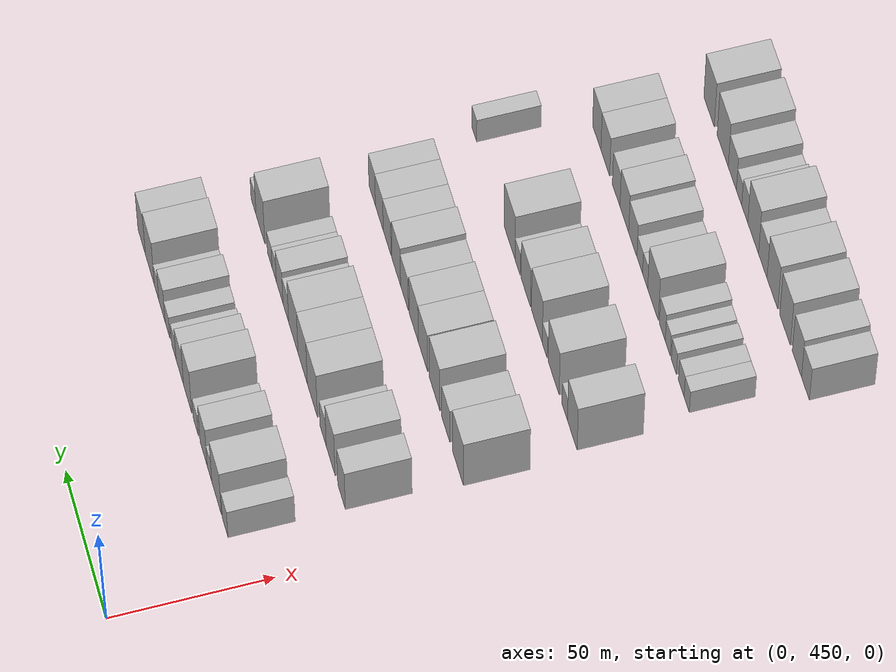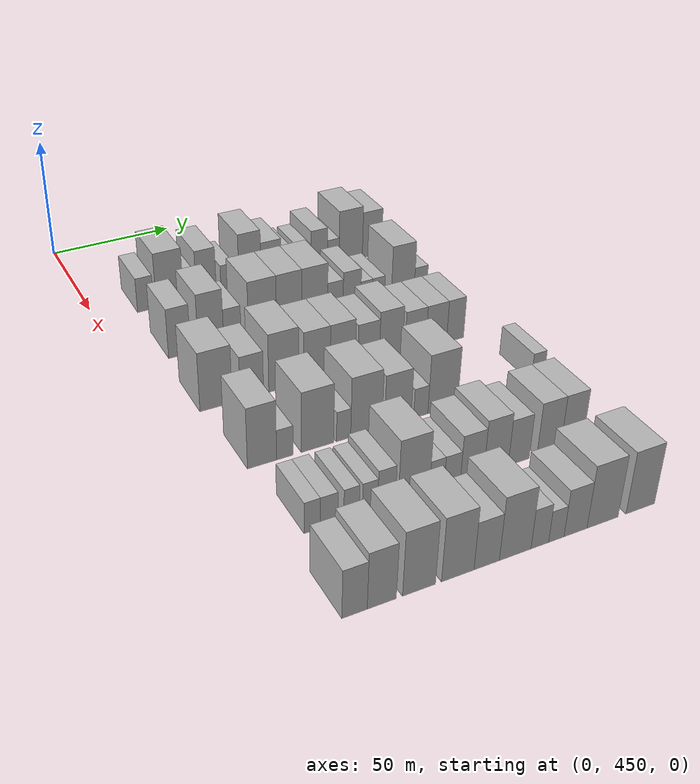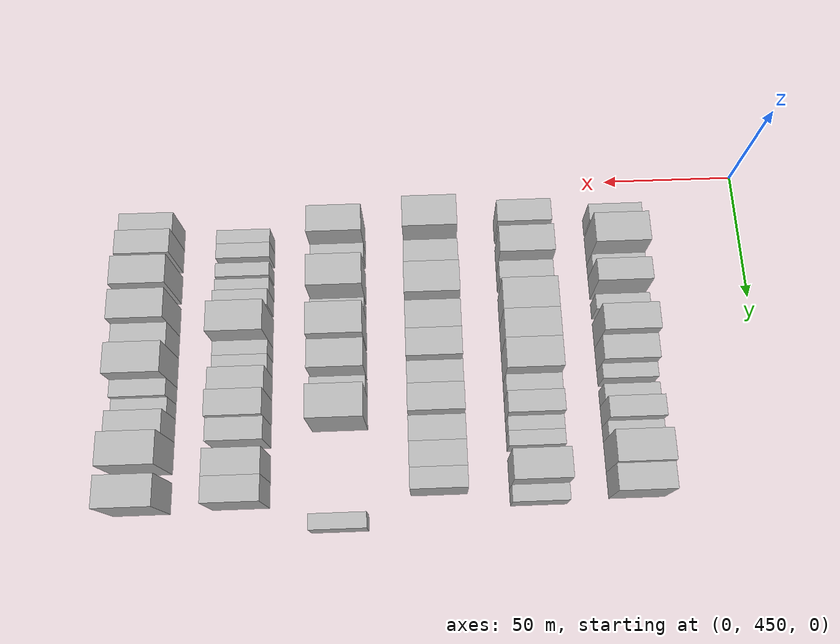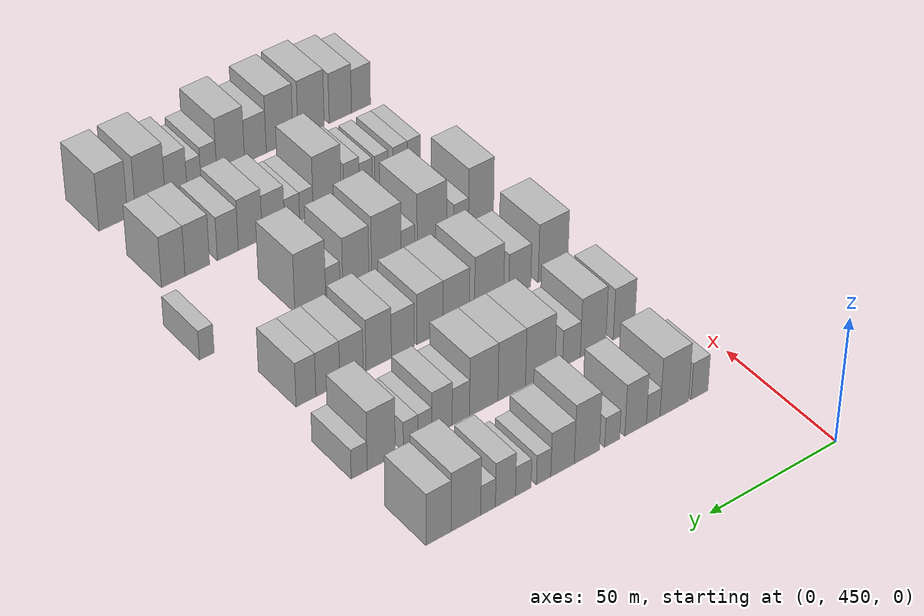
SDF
<sdf version="1.6">
 <world name="default">
  <model name="building_114">
   <static>1</static>
   <pose>50.0000 469.5621 0 0.000000 0.000000 0.000000</pose>
   <link name="link">
    <pose>0 0 7.50 0 0 0</pose>
    <collision name="collision"><geometry><box><size>20.0000 6.7365 15.0000</size></box></geometry></collision>
    <visual name="visual">
     <cast_shadows>0</cast_shadows>
     <geometry><box><size>20.0000 6.7365 15.0000</size></box></geometry>
     <material>
      <script>
       <uri>model://HANNAS_wall/materials/scripts</uri>
       <uri>model://HANNAS_wall/materials/textures</uri>
       <name>vrc/HANNAS_wall</name>
      </script>
     </material>
    </visual>
   </link>
  </model>
  <model name="building_115">
   <static>1</static>
   <pose>50.0000 479.5856 0 0.000000 0.000000 0.000000</pose>
   <link name="link">
    <pose>0 0 12.00 0 0 0</pose>
    <collision name="collision"><geometry><box><size>20.0000 11.3105 24.0000</size></box></geometry></collision>
    <visual name="visual">
     <cast_shadows>0</cast_shadows>
     <geometry><box><size>20.0000 11.3105 24.0000</size></box></geometry>
     <material>
      <script>
       <uri>model://HANNAS_wall/materials/scripts</uri>
       <uri>model://HANNAS_wall/materials/textures</uri>
       <name>vrc/HANNAS_wall</name>
      </script>
     </material>
    </visual>
   </link>
  </model>
  <model name="building_116">
   <static>1</static>
   <pose>50.0000 487.9331 0 0.000000 0.000000 0.000000</pose>
   <link name="link">
    <pose>0 0 6.00 0 0 0</pose>
    <collision name="collision"><geometry><box><size>20.0000 5.3845 12.0000</size></box></geometry></collision>
    <visual name="visual">
     <cast_shadows>0</cast_shadows>
     <geometry><box><size>20.0000 5.3845 12.0000</size></box></geometry>
     <material>
      <script>
       <uri>model://HANNAS_wall/materials/scripts</uri>
       <uri>model://HANNAS_wall/materials/textures</uri>
       <name>vrc/HANNAS_wall</name>
      </script>
     </material>
    </visual>
   </link>
  </model>
  <model name="building_117">
   <static>1</static>
   <pose>50.0000 494.8552 0 0.000000 0.000000 0.000000</pose>
   <link name="link">
    <pose>0 0 10.50 0 0 0</pose>
    <collision name="collision"><geometry><box><size>20.0000 8.4597 21.0000</size></box></geometry></collision>
    <visual name="visual">
     <cast_shadows>0</cast_shadows>
     <geometry><box><size>20.0000 8.4597 21.0000</size></box></geometry>
     <material>
      <script>
       <uri>model://HANNAS_wall/materials/scripts</uri>
       <uri>model://HANNAS_wall/materials/textures</uri>
       <name>vrc/HANNAS_wall</name>
      </script>
     </material>
    </visual>
   </link>
  </model>
  <model name="building_118">
   <static>1</static>
   <pose>50.0000 503.9972 0 0.000000 0.000000 0.000000</pose>
   <link name="link">
    <pose>0 0 6.00 0 0 0</pose>
    <collision name="collision"><geometry><box><size>20.0000 5.8242 12.0000</size></box></geometry></collision>
    <visual name="visual">
     <cast_shadows>0</cast_shadows>
     <geometry><box><size>20.0000 5.8242 12.0000</size></box></geometry>
     <material>
      <script>
       <uri>model://HANNAS_wall/materials/scripts</uri>
       <uri>model://HANNAS_wall/materials/textures</uri>
       <name>vrc/HANNAS_wall</name>
      </script>
     </material>
    </visual>
   </link>
  </model>
  <model name="building_119">
   <static>1</static>
   <pose>50.0000 513.7393 0 0.000000 0.000000 0.000000</pose>
   <link name="link">
    <pose>0 0 12.00 0 0 0</pose>
    <collision name="collision"><geometry><box><size>20.0000 9.6599 24.0000</size></box></geometry></collision>
    <visual name="visual">
     <cast_shadows>0</cast_shadows>
     <geometry><box><size>20.0000 9.6599 24.0000</size></box></geometry>
     <material>
      <script>
       <uri>model://HANNAS_wall/materials/scripts</uri>
       <uri>model://HANNAS_wall/materials/textures</uri>
       <name>vrc/HANNAS_wall</name>
      </script>
     </material>
    </visual>
   </link>
  </model>
  <model name="building_120">
   <static>1</static>
   <pose>50.0000 523.0557 0 0.000000 0.000000 0.000000</pose>
   <link name="link">
    <pose>0 0 9.00 0 0 0</pose>
    <collision name="collision"><geometry><box><size>20.0000 8.9731 18.0000</size></box></geometry></collision>
    <visual name="visual">
     <cast_shadows>0</cast_shadows>
     <geometry><box><size>20.0000 8.9731 18.0000</size></box></geometry>
     <material>
      <script>
       <uri>model://HANNAS_wall/materials/scripts</uri>
       <uri>model://HANNAS_wall/materials/textures</uri>
       <name>vrc/HANNAS_wall</name>
      </script>
     </material>
    </visual>
   </link>
  </model>
  <model name="building_121">
   <static>1</static>
   <pose>50.0000 530.2802 0 0.000000 0.000000 0.000000</pose>
   <link name="link">
    <pose>0 0 6.00 0 0 0</pose>
    <collision name="collision"><geometry><box><size>20.0000 5.4758 12.0000</size></box></geometry></collision>
    <visual name="visual">
     <cast_shadows>0</cast_shadows>
     <geometry><box><size>20.0000 5.4758 12.0000</size></box></geometry>
     <material>
      <script>
       <uri>model://HANNAS_wall/materials/scripts</uri>
       <uri>model://HANNAS_wall/materials/textures</uri>
       <name>vrc/HANNAS_wall</name>
      </script>
     </material>
    </visual>
   </link>
  </model>
  <model name="building_122">
   <static>1</static>
   <pose>50.0000 537.9305 0 0.000000 0.000000 0.000000</pose>
   <link name="link">
    <pose>0 0 6.00 0 0 0</pose>
    <collision name="collision"><geometry><box><size>20.0000 5.8248 12.0000</size></box></geometry></collision>
    <visual name="visual">
     <cast_shadows>0</cast_shadows>
     <geometry><box><size>20.0000 5.8248 12.0000</size></box></geometry>
     <material>
      <script>
       <uri>model://HANNAS_wall/materials/scripts</uri>
       <uri>model://HANNAS_wall/materials/textures</uri>
       <name>vrc/HANNAS_wall</name>
      </script>
     </material>
    </visual>
   </link>
  </model>
  <model name="building_123">
   <static>1</static>
   <pose>50.0000 544.6161 0 0.000000 0.000000 0.000000</pose>
   <link name="link">
    <pose>0 0 9.00 0 0 0</pose>
    <collision name="collision"><geometry><box><size>20.0000 7.5464 18.0000</size></box></geometry></collision>
    <visual name="visual">
     <cast_shadows>0</cast_shadows>
     <geometry><box><size>20.0000 7.5464 18.0000</size></box></geometry>
     <material>
      <script>
       <uri>model://HANNAS_wall/materials/scripts</uri>
       <uri>model://HANNAS_wall/materials/textures</uri>
       <name>vrc/HANNAS_wall</name>
      </script>
     </material>
    </visual>
   </link>
  </model>
  <model name="building_124">
   <static>1</static>
   <pose>50.0000 551.1045 0 0.000000 0.000000 0.000000</pose>
   <link name="link">
    <pose>0 0 6.00 0 0 0</pose>
    <collision name="collision"><geometry><box><size>20.0000 5.4303 12.0000</size></box></geometry></collision>
    <visual name="visual">
     <cast_shadows>0</cast_shadows>
     <geometry><box><size>20.0000 5.4303 12.0000</size></box></geometry>
     <material>
      <script>
       <uri>model://HANNAS_wall/materials/scripts</uri>
       <uri>model://HANNAS_wall/materials/textures</uri>
       <name>vrc/HANNAS_wall</name>
      </script>
     </material>
    </visual>
   </link>
  </model>
  <model name="building_125">
   <static>1</static>
   <pose>50.0000 559.2895 0 0.000000 0.000000 0.000000</pose>
   <link name="link">
    <pose>0 0 12.00 0 0 0</pose>
    <collision name="collision"><geometry><box><size>20.0000 10.9396 24.0000</size></box></geometry></collision>
    <visual name="visual">
     <cast_shadows>0</cast_shadows>
     <geometry><box><size>20.0000 10.9396 24.0000</size></box></geometry>
     <material>
      <script>
       <uri>model://HANNAS_wall/materials/scripts</uri>
       <uri>model://HANNAS_wall/materials/textures</uri>
       <name>vrc/HANNAS_wall</name>
      </script>
     </material>
    </visual>
   </link>
  </model>
  <model name="building_126">
   <static>1</static>
   <pose>50.0000 569.3454 0 0.000000 0.000000 0.000000</pose>
   <link name="link">
    <pose>0 0 10.50 0 0 0</pose>
    <collision name="collision"><geometry><box><size>20.0000 9.1723 21.0000</size></box></geometry></collision>
    <visual name="visual">
     <cast_shadows>0</cast_shadows>
     <geometry><box><size>20.0000 9.1723 21.0000</size></box></geometry>
     <material>
      <script>
       <uri>model://HANNAS_wall/materials/scripts</uri>
       <uri>model://HANNAS_wall/materials/textures</uri>
       <name>vrc/HANNAS_wall</name>
      </script>
     </material>
    </visual>
   </link>
  </model>
  <model name="building_235">
   <static>1</static>
   <pose>85.0000 470.4084 0 0.000000 0.000000 0.000000</pose>
   <link name="link">
    <pose>0 0 10.50 0 0 0</pose>
    <collision name="collision"><geometry><box><size>20.0000 8.6065 21.0000</size></box></geometry></collision>
    <visual name="visual">
     <cast_shadows>0</cast_shadows>
     <geometry><box><size>20.0000 8.6065 21.0000</size></box></geometry>
     <material>
      <script>
       <uri>model://HANNAS_wall/materials/scripts</uri>
       <uri>model://HANNAS_wall/materials/textures</uri>
       <name>vrc/HANNAS_wall</name>
      </script>
     </material>
    </visual>
   </link>
  </model>
  <model name="building_236">
   <static>1</static>
   <pose>85.0000 482.7807 0 0.000000 0.000000 0.000000</pose>
   <link name="link">
    <pose>0 0 12.00 0 0 0</pose>
    <collision name="collision"><geometry><box><size>20.0000 10.1380 24.0000</size></box></geometry></collision>
    <visual name="visual">
     <cast_shadows>0</cast_shadows>
     <geometry><box><size>20.0000 10.1380 24.0000</size></box></geometry>
     <material>
      <script>
       <uri>model://HANNAS_wall/materials/scripts</uri>
       <uri>model://HANNAS_wall/materials/textures</uri>
       <name>vrc/HANNAS_wall</name>
      </script>
     </material>
    </visual>
   </link>
  </model>
  <model name="building_237">
   <static>1</static>
   <pose>85.0000 491.3595 0 0.000000 0.000000 0.000000</pose>
   <link name="link">
    <pose>0 0 7.50 0 0 0</pose>
    <collision name="collision"><geometry><box><size>20.0000 7.0197 15.0000</size></box></geometry></collision>
    <visual name="visual">
     <cast_shadows>0</cast_shadows>
     <geometry><box><size>20.0000 7.0197 15.0000</size></box></geometry>
     <material>
      <script>
       <uri>model://HANNAS_wall/materials/scripts</uri>
       <uri>model://HANNAS_wall/materials/textures</uri>
       <name>vrc/HANNAS_wall</name>
      </script>
     </material>
    </visual>
   </link>
  </model>
  <model name="building_238">
   <static>1</static>
   <pose>85.0000 503.6456 0 0.000000 0.000000 0.000000</pose>
   <link name="link">
    <pose>0 0 12.00 0 0 0</pose>
    <collision name="collision"><geometry><box><size>20.0000 11.5526 24.0000</size></box></geometry></collision>
    <visual name="visual">
     <cast_shadows>0</cast_shadows>
     <geometry><box><size>20.0000 11.5526 24.0000</size></box></geometry>
     <material>
      <script>
       <uri>model://HANNAS_wall/materials/scripts</uri>
       <uri>model://HANNAS_wall/materials/textures</uri>
       <name>vrc/HANNAS_wall</name>
      </script>
     </material>
    </visual>
   </link>
  </model>
  <model name="building_239">
   <static>1</static>
   <pose>85.0000 514.7600 0 0.000000 0.000000 0.000000</pose>
   <link name="link">
    <pose>0 0 12.00 0 0 0</pose>
    <collision name="collision"><geometry><box><size>20.0000 10.6761 24.0000</size></box></geometry></collision>
    <visual name="visual">
     <cast_shadows>0</cast_shadows>
     <geometry><box><size>20.0000 10.6761 24.0000</size></box></geometry>
     <material>
      <script>
       <uri>model://HANNAS_wall/materials/scripts</uri>
       <uri>model://HANNAS_wall/materials/textures</uri>
       <name>vrc/HANNAS_wall</name>
      </script>
     </material>
    </visual>
   </link>
  </model>
  <model name="building_240">
   <static>1</static>
   <pose>85.0000 525.5397 0 0.000000 0.000000 0.000000</pose>
   <link name="link">
    <pose>0 0 12.00 0 0 0</pose>
    <collision name="collision"><geometry><box><size>20.0000 10.8834 24.0000</size></box></geometry></collision>
    <visual name="visual">
     <cast_shadows>0</cast_shadows>
     <geometry><box><size>20.0000 10.8834 24.0000</size></box></geometry>
     <material>
      <script>
       <uri>model://HANNAS_wall/materials/scripts</uri>
       <uri>model://HANNAS_wall/materials/textures</uri>
       <name>vrc/HANNAS_wall</name>
      </script>
     </material>
    </visual>
   </link>
  </model>
  <model name="building_241">
   <static>1</static>
   <pose>85.0000 534.3045 0 0.000000 0.000000 0.000000</pose>
   <link name="link">
    <pose>0 0 7.50 0 0 0</pose>
    <collision name="collision"><geometry><box><size>20.0000 6.6462 15.0000</size></box></geometry></collision>
    <visual name="visual">
     <cast_shadows>0</cast_shadows>
     <geometry><box><size>20.0000 6.6462 15.0000</size></box></geometry>
     <material>
      <script>
       <uri>model://HANNAS_wall/materials/scripts</uri>
       <uri>model://HANNAS_wall/materials/textures</uri>
       <name>vrc/HANNAS_wall</name>
      </script>
     </material>
    </visual>
   </link>
  </model>
  <model name="building_242">
   <static>1</static>
   <pose>85.0000 541.4974 0 0.000000 0.000000 0.000000</pose>
   <link name="link">
    <pose>0 0 9.00 0 0 0</pose>
    <collision name="collision"><geometry><box><size>20.0000 7.7395 18.0000</size></box></geometry></collision>
    <visual name="visual">
     <cast_shadows>0</cast_shadows>
     <geometry><box><size>20.0000 7.7395 18.0000</size></box></geometry>
     <material>
      <script>
       <uri>model://HANNAS_wall/materials/scripts</uri>
       <uri>model://HANNAS_wall/materials/textures</uri>
       <name>vrc/HANNAS_wall</name>
      </script>
     </material>
    </visual>
   </link>
  </model>
  <model name="building_243">
   <static>1</static>
   <pose>85.0000 547.9407 0 0.000000 0.000000 0.000000</pose>
   <link name="link">
    <pose>0 0 6.00 0 0 0</pose>
    <collision name="collision"><geometry><box><size>20.0000 5.1470 12.0000</size></box></geometry></collision>
    <visual name="visual">
     <cast_shadows>0</cast_shadows>
     <geometry><box><size>20.0000 5.1470 12.0000</size></box></geometry>
     <material>
      <script>
       <uri>model://HANNAS_wall/materials/scripts</uri>
       <uri>model://HANNAS_wall/materials/textures</uri>
       <name>vrc/HANNAS_wall</name>
      </script>
     </material>
    </visual>
   </link>
  </model>
  <model name="building_244">
   <static>1</static>
   <pose>85.0000 553.2492 0 0.000000 0.000000 0.000000</pose>
   <link name="link">
    <pose>0 0 6.00 0 0 0</pose>
    <collision name="collision"><geometry><box><size>20.0000 5.4701 12.0000</size></box></geometry></collision>
    <visual name="visual">
     <cast_shadows>0</cast_shadows>
     <geometry><box><size>20.0000 5.4701 12.0000</size></box></geometry>
     <material>
      <script>
       <uri>model://HANNAS_wall/materials/scripts</uri>
       <uri>model://HANNAS_wall/materials/textures</uri>
       <name>vrc/HANNAS_wall</name>
      </script>
     </material>
    </visual>
   </link>
  </model>
  <model name="building_245">
   <static>1</static>
   <pose>85.0000 564.1860 0 0.000000 0.000000 0.000000</pose>
   <link name="link">
    <pose>0 0 12.00 0 0 0</pose>
    <collision name="collision"><geometry><box><size>20.0000 10.4035 24.0000</size></box></geometry></collision>
    <visual name="visual">
     <cast_shadows>0</cast_shadows>
     <geometry><box><size>20.0000 10.4035 24.0000</size></box></geometry>
     <material>
      <script>
       <uri>model://HANNAS_wall/materials/scripts</uri>
       <uri>model://HANNAS_wall/materials/textures</uri>
       <name>vrc/HANNAS_wall</name>
      </script>
     </material>
    </visual>
   </link>
  </model>
  <model name="building_246">
   <static>1</static>
   <pose>85.0000 572.3270 0 0.000000 0.000000 0.000000</pose>
   <link name="link">
    <pose>0 0 6.00 0 0 0</pose>
    <collision name="collision"><geometry><box><size>20.0000 5.8785 12.0000</size></box></geometry></collision>
    <visual name="visual">
     <cast_shadows>0</cast_shadows>
     <geometry><box><size>20.0000 5.8785 12.0000</size></box></geometry>
     <material>
      <script>
       <uri>model://HANNAS_wall/materials/scripts</uri>
       <uri>model://HANNAS_wall/materials/textures</uri>
       <name>vrc/HANNAS_wall</name>
      </script>
     </material>
    </visual>
   </link>
  </model>
  <model name="building_363">
   <static>1</static>
   <pose>120.0000 470.5890 0 0.000000 0.000000 0.000000</pose>
   <link name="link">
    <pose>0 0 12.00 0 0 0</pose>
    <collision name="collision"><geometry><box><size>20.0000 11.9671 24.0000</size></box></geometry></collision>
    <visual name="visual">
     <cast_shadows>0</cast_shadows>
     <geometry><box><size>20.0000 11.9671 24.0000</size></box></geometry>
     <material>
      <script>
       <uri>model://HANNAS_wall/materials/scripts</uri>
       <uri>model://HANNAS_wall/materials/textures</uri>
       <name>vrc/HANNAS_wall</name>
      </script>
     </material>
    </visual>
   </link>
  </model>
  <model name="building_364">
   <static>1</static>
   <pose>120.0000 484.0061 0 0.000000 0.000000 0.000000</pose>
   <link name="link">
    <pose>0 0 9.00 0 0 0</pose>
    <collision name="collision"><geometry><box><size>20.0000 8.8670 18.0000</size></box></geometry></collision>
    <visual name="visual">
     <cast_shadows>0</cast_shadows>
     <geometry><box><size>20.0000 8.8670 18.0000</size></box></geometry>
     <material>
      <script>
       <uri>model://HANNAS_wall/materials/scripts</uri>
       <uri>model://HANNAS_wall/materials/textures</uri>
       <name>vrc/HANNAS_wall</name>
      </script>
     </material>
    </visual>
   </link>
  </model>
  <model name="building_365">
   <static>1</static>
   <pose>120.0000 496.2478 0 0.000000 0.000000 0.000000</pose>
   <link name="link">
    <pose>0 0 12.00 0 0 0</pose>
    <collision name="collision"><geometry><box><size>20.0000 11.6165 24.0000</size></box></geometry></collision>
    <visual name="visual">
     <cast_shadows>0</cast_shadows>
     <geometry><box><size>20.0000 11.6165 24.0000</size></box></geometry>
     <material>
      <script>
       <uri>model://HANNAS_wall/materials/scripts</uri>
       <uri>model://HANNAS_wall/materials/textures</uri>
       <name>vrc/HANNAS_wall</name>
      </script>
     </material>
    </visual>
   </link>
  </model>
  <model name="building_366">
   <static>1</static>
   <pose>120.0000 509.2590 0 0.000000 0.000000 0.000000</pose>
   <link name="link">
    <pose>0 0 10.50 0 0 0</pose>
    <collision name="collision"><geometry><box><size>20.0000 10.4059 21.0000</size></box></geometry></collision>
    <visual name="visual">
     <cast_shadows>0</cast_shadows>
     <geometry><box><size>20.0000 10.4059 21.0000</size></box></geometry>
     <material>
      <script>
       <uri>model://HANNAS_wall/materials/scripts</uri>
       <uri>model://HANNAS_wall/materials/textures</uri>
       <name>vrc/HANNAS_wall</name>
      </script>
     </material>
    </visual>
   </link>
  </model>
  <model name="building_367">
   <static>1</static>
   <pose>120.0000 519.5339 0 0.000000 0.000000 0.000000</pose>
   <link name="link">
    <pose>0 0 10.50 0 0 0</pose>
    <collision name="collision"><geometry><box><size>20.0000 10.1439 21.0000</size></box></geometry></collision>
    <visual name="visual">
     <cast_shadows>0</cast_shadows>
     <geometry><box><size>20.0000 10.1439 21.0000</size></box></geometry>
     <material>
      <script>
       <uri>model://HANNAS_wall/materials/scripts</uri>
       <uri>model://HANNAS_wall/materials/textures</uri>
       <name>vrc/HANNAS_wall</name>
      </script>
     </material>
    </visual>
   </link>
  </model>
  <model name="building_368">
   <static>1</static>
   <pose>120.0000 530.0169 0 0.000000 0.000000 0.000000</pose>
   <link name="link">
    <pose>0 0 9.00 0 0 0</pose>
    <collision name="collision"><geometry><box><size>20.0000 8.8221 18.0000</size></box></geometry></collision>
    <visual name="visual">
     <cast_shadows>0</cast_shadows>
     <geometry><box><size>20.0000 8.8221 18.0000</size></box></geometry>
     <material>
      <script>
       <uri>model://HANNAS_wall/materials/scripts</uri>
       <uri>model://HANNAS_wall/materials/textures</uri>
       <name>vrc/HANNAS_wall</name>
      </script>
     </material>
    </visual>
   </link>
  </model>
  <model name="building_369">
   <static>1</static>
   <pose>120.0000 539.2933 0 0.000000 0.000000 0.000000</pose>
   <link name="link">
    <pose>0 0 10.50 0 0 0</pose>
    <collision name="collision"><geometry><box><size>20.0000 9.7307 21.0000</size></box></geometry></collision>
    <visual name="visual">
     <cast_shadows>0</cast_shadows>
     <geometry><box><size>20.0000 9.7307 21.0000</size></box></geometry>
     <material>
      <script>
       <uri>model://HANNAS_wall/materials/scripts</uri>
       <uri>model://HANNAS_wall/materials/textures</uri>
       <name>vrc/HANNAS_wall</name>
      </script>
     </material>
    </visual>
   </link>
  </model>
  <model name="building_370">
   <static>1</static>
   <pose>120.0000 549.6081 0 0.000000 0.000000 0.000000</pose>
   <link name="link">
    <pose>0 0 9.00 0 0 0</pose>
    <collision name="collision"><geometry><box><size>20.0000 8.8989 18.0000</size></box></geometry></collision>
    <visual name="visual">
     <cast_shadows>0</cast_shadows>
     <geometry><box><size>20.0000 8.8989 18.0000</size></box></geometry>
     <material>
      <script>
       <uri>model://HANNAS_wall/materials/scripts</uri>
       <uri>model://HANNAS_wall/materials/textures</uri>
       <name>vrc/HANNAS_wall</name>
      </script>
     </material>
    </visual>
   </link>
  </model>
  <model name="building_371">
   <static>1</static>
   <pose>120.0000 558.5495 0 0.000000 0.000000 0.000000</pose>
   <link name="link">
    <pose>0 0 9.00 0 0 0</pose>
    <collision name="collision"><geometry><box><size>20.0000 8.9840 18.0000</size></box></geometry></collision>
    <visual name="visual">
     <cast_shadows>0</cast_shadows>
     <geometry><box><size>20.0000 8.9840 18.0000</size></box></geometry>
     <material>
      <script>
       <uri>model://HANNAS_wall/materials/scripts</uri>
       <uri>model://HANNAS_wall/materials/textures</uri>
       <name>vrc/HANNAS_wall</name>
      </script>
     </material>
    </visual>
   </link>
  </model>
  <model name="building_372">
   <static>1</static>
   <pose>120.0000 566.7502 0 0.000000 0.000000 0.000000</pose>
   <link name="link">
    <pose>0 0 9.00 0 0 0</pose>
    <collision name="collision"><geometry><box><size>20.0000 7.4173 18.0000</size></box></geometry></collision>
    <visual name="visual">
     <cast_shadows>0</cast_shadows>
     <geometry><box><size>20.0000 7.4173 18.0000</size></box></geometry>
     <material>
      <script>
       <uri>model://HANNAS_wall/materials/scripts</uri>
       <uri>model://HANNAS_wall/materials/textures</uri>
       <name>vrc/HANNAS_wall</name>
      </script>
     </material>
    </visual>
   </link>
  </model>
  <model name="building_486">
   <static>1</static>
   <pose>155.0000 472.3223 0 0.000000 0.000000 0.000000</pose>
   <link name="link">
    <pose>0 0 12.00 0 0 0</pose>
    <collision name="collision"><geometry><box><size>20.0000 10.2771 24.0000</size></box></geometry></collision>
    <visual name="visual">
     <cast_shadows>0</cast_shadows>
     <geometry><box><size>20.0000 10.2771 24.0000</size></box></geometry>
     <material>
      <script>
       <uri>model://HANNAS_wall/materials/scripts</uri>
       <uri>model://HANNAS_wall/materials/textures</uri>
       <name>vrc/HANNAS_wall</name>
      </script>
     </material>
    </visual>
   </link>
  </model>
  <model name="building_487">
   <static>1</static>
   <pose>155.0000 480.4054 0 0.000000 0.000000 0.000000</pose>
   <link name="link">
    <pose>0 0 6.00 0 0 0</pose>
    <collision name="collision"><geometry><box><size>20.0000 5.8889 12.0000</size></box></geometry></collision>
    <visual name="visual">
     <cast_shadows>0</cast_shadows>
     <geometry><box><size>20.0000 5.8889 12.0000</size></box></geometry>
     <material>
      <script>
       <uri>model://HANNAS_wall/materials/scripts</uri>
       <uri>model://HANNAS_wall/materials/textures</uri>
       <name>vrc/HANNAS_wall</name>
      </script>
     </material>
    </visual>
   </link>
  </model>
  <model name="building_488">
   <static>1</static>
   <pose>155.0000 492.2635 0 0.000000 0.000000 0.000000</pose>
   <link name="link">
    <pose>0 0 12.00 0 0 0</pose>
    <collision name="collision"><geometry><box><size>20.0000 11.8274 24.0000</size></box></geometry></collision>
    <visual name="visual">
     <cast_shadows>0</cast_shadows>
     <geometry><box><size>20.0000 11.8274 24.0000</size></box></geometry>
     <material>
      <script>
       <uri>model://HANNAS_wall/materials/scripts</uri>
       <uri>model://HANNAS_wall/materials/textures</uri>
       <name>vrc/HANNAS_wall</name>
      </script>
     </material>
    </visual>
   </link>
  </model>
  <model name="building_489">
   <static>1</static>
   <pose>155.0000 501.8370 0 0.000000 0.000000 0.000000</pose>
   <link name="link">
    <pose>0 0 6.00 0 0 0</pose>
    <collision name="collision"><geometry><box><size>20.0000 5.3195 12.0000</size></box></geometry></collision>
    <visual name="visual">
     <cast_shadows>0</cast_shadows>
     <geometry><box><size>20.0000 5.3195 12.0000</size></box></geometry>
     <material>
      <script>
       <uri>model://HANNAS_wall/materials/scripts</uri>
       <uri>model://HANNAS_wall/materials/textures</uri>
       <name>vrc/HANNAS_wall</name>
      </script>
     </material>
    </visual>
   </link>
  </model>
  <model name="building_490">
   <static>1</static>
   <pose>155.0000 510.3837 0 0.000000 0.000000 0.000000</pose>
   <link name="link">
    <pose>0 0 12.00 0 0 0</pose>
    <collision name="collision"><geometry><box><size>20.0000 11.7738 24.0000</size></box></geometry></collision>
    <visual name="visual">
     <cast_shadows>0</cast_shadows>
     <geometry><box><size>20.0000 11.7738 24.0000</size></box></geometry>
     <material>
      <script>
       <uri>model://HANNAS_wall/materials/scripts</uri>
       <uri>model://HANNAS_wall/materials/textures</uri>
       <name>vrc/HANNAS_wall</name>
      </script>
     </material>
    </visual>
   </link>
  </model>
  <model name="building_491">
   <static>1</static>
   <pose>155.0000 522.4294 0 0.000000 0.000000 0.000000</pose>
   <link name="link">
    <pose>0 0 10.50 0 0 0</pose>
    <collision name="collision"><geometry><box><size>20.0000 10.3175 21.0000</size></box></geometry></collision>
    <visual name="visual">
     <cast_shadows>0</cast_shadows>
     <geometry><box><size>20.0000 10.3175 21.0000</size></box></geometry>
     <material>
      <script>
       <uri>model://HANNAS_wall/materials/scripts</uri>
       <uri>model://HANNAS_wall/materials/textures</uri>
       <name>vrc/HANNAS_wall</name>
      </script>
     </material>
    </visual>
   </link>
  </model>
  <model name="building_492">
   <static>1</static>
   <pose>155.0000 531.3951 0 0.000000 0.000000 0.000000</pose>
   <link name="link">
    <pose>0 0 6.00 0 0 0</pose>
    <collision name="collision"><geometry><box><size>20.0000 5.6139 12.0000</size></box></geometry></collision>
    <visual name="visual">
     <cast_shadows>0</cast_shadows>
     <geometry><box><size>20.0000 5.6139 12.0000</size></box></geometry>
     <material>
      <script>
       <uri>model://HANNAS_wall/materials/scripts</uri>
       <uri>model://HANNAS_wall/materials/textures</uri>
       <name>vrc/HANNAS_wall</name>
      </script>
     </material>
    </visual>
   </link>
  </model>
  <model name="building_493">
   <static>1</static>
   <pose>155.0000 540.1591 0 0.000000 0.000000 0.000000</pose>
   <link name="link">
    <pose>0 0 12.00 0 0 0</pose>
    <collision name="collision"><geometry><box><size>20.0000 11.9141 24.0000</size></box></geometry></collision>
    <visual name="visual">
     <cast_shadows>0</cast_shadows>
     <geometry><box><size>20.0000 11.9141 24.0000</size></box></geometry>
     <material>
      <script>
       <uri>model://HANNAS_wall/materials/scripts</uri>
       <uri>model://HANNAS_wall/materials/textures</uri>
       <name>vrc/HANNAS_wall</name>
      </script>
     </material>
    </visual>
   </link>
  </model>
  <model name="building_494">
   <static>1</static>
   <pose>155.0000 579.3486 0 0.000000 0.000000 0.000000</pose>
   <link name="link">
    <pose>0 0 6.00 0 0 0</pose>
    <collision name="collision"><geometry><box><size>20.0000 5.4883 12.0000</size></box></geometry></collision>
    <visual name="visual">
     <cast_shadows>0</cast_shadows>
     <geometry><box><size>20.0000 5.4883 12.0000</size></box></geometry>
     <material>
      <script>
       <uri>model://HANNAS_wall/materials/scripts</uri>
       <uri>model://HANNAS_wall/materials/textures</uri>
       <name>vrc/HANNAS_wall</name>
      </script>
     </material>
    </visual>
   </link>
  </model>
  <model name="building_608">
   <static>1</static>
   <pose>190.0000 473.2176 0 0.000000 0.000000 0.000000</pose>
   <link name="link">
    <pose>0 0 6.00 0 0 0</pose>
    <collision name="collision"><geometry><box><size>20.0000 5.4086 12.0000</size></box></geometry></collision>
    <visual name="visual">
     <cast_shadows>0</cast_shadows>
     <geometry><box><size>20.0000 5.4086 12.0000</size></box></geometry>
     <material>
      <script>
       <uri>model://HANNAS_wall/materials/scripts</uri>
       <uri>model://HANNAS_wall/materials/textures</uri>
       <name>vrc/HANNAS_wall</name>
      </script>
     </material>
    </visual>
   </link>
  </model>
  <model name="building_609">
   <static>1</static>
   <pose>190.0000 478.8675 0 0.000000 0.000000 0.000000</pose>
   <link name="link">
    <pose>0 0 6.00 0 0 0</pose>
    <collision name="collision"><geometry><box><size>20.0000 5.8913 12.0000</size></box></geometry></collision>
    <visual name="visual">
     <cast_shadows>0</cast_shadows>
     <geometry><box><size>20.0000 5.8913 12.0000</size></box></geometry>
     <material>
      <script>
       <uri>model://HANNAS_wall/materials/scripts</uri>
       <uri>model://HANNAS_wall/materials/textures</uri>
       <name>vrc/HANNAS_wall</name>
      </script>
     </material>
    </visual>
   </link>
  </model>
  <model name="building_610">
   <static>1</static>
   <pose>190.0000 486.4945 0 0.000000 0.000000 0.000000</pose>
   <link name="link">
    <pose>0 0 6.00 0 0 0</pose>
    <collision name="collision"><geometry><box><size>20.0000 5.3626 12.0000</size></box></geometry></collision>
    <visual name="visual">
     <cast_shadows>0</cast_shadows>
     <geometry><box><size>20.0000 5.3626 12.0000</size></box></geometry>
     <material>
      <script>
       <uri>model://HANNAS_wall/materials/scripts</uri>
       <uri>model://HANNAS_wall/materials/textures</uri>
       <name>vrc/HANNAS_wall</name>
      </script>
     </material>
    </visual>
   </link>
  </model>
  <model name="building_611">
   <static>1</static>
   <pose>190.0000 492.8447 0 0.000000 0.000000 0.000000</pose>
   <link name="link">
    <pose>0 0 6.00 0 0 0</pose>
    <collision name="collision"><geometry><box><size>20.0000 5.3379 12.0000</size></box></geometry></collision>
    <visual name="visual">
     <cast_shadows>0</cast_shadows>
     <geometry><box><size>20.0000 5.3379 12.0000</size></box></geometry>
     <material>
      <script>
       <uri>model://HANNAS_wall/materials/scripts</uri>
       <uri>model://HANNAS_wall/materials/textures</uri>
       <name>vrc/HANNAS_wall</name>
      </script>
     </material>
    </visual>
   </link>
  </model>
  <model name="building_612">
   <static>1</static>
   <pose>190.0000 498.6452 0 0.000000 0.000000 0.000000</pose>
   <link name="link">
    <pose>0 0 7.50 0 0 0</pose>
    <collision name="collision"><geometry><box><size>20.0000 6.2629 15.0000</size></box></geometry></collision>
    <visual name="visual">
     <cast_shadows>0</cast_shadows>
     <geometry><box><size>20.0000 6.2629 15.0000</size></box></geometry>
     <material>
      <script>
       <uri>model://HANNAS_wall/materials/scripts</uri>
       <uri>model://HANNAS_wall/materials/textures</uri>
       <name>vrc/HANNAS_wall</name>
      </script>
     </material>
    </visual>
   </link>
  </model>
  <model name="building_613">
   <static>1</static>
   <pose>190.0000 508.3809 0 0.000000 0.000000 0.000000</pose>
   <link name="link">
    <pose>0 0 12.00 0 0 0</pose>
    <collision name="collision"><geometry><box><size>20.0000 11.2085 24.0000</size></box></geometry></collision>
    <visual name="visual">
     <cast_shadows>0</cast_shadows>
     <geometry><box><size>20.0000 11.2085 24.0000</size></box></geometry>
     <material>
      <script>
       <uri>model://HANNAS_wall/materials/scripts</uri>
       <uri>model://HANNAS_wall/materials/textures</uri>
       <name>vrc/HANNAS_wall</name>
      </script>
     </material>
    </visual>
   </link>
  </model>
  <model name="building_614">
   <static>1</static>
   <pose>190.0000 516.6739 0 0.000000 0.000000 0.000000</pose>
   <link name="link">
    <pose>0 0 6.00 0 0 0</pose>
    <collision name="collision"><geometry><box><size>20.0000 5.3775 12.0000</size></box></geometry></collision>
    <visual name="visual">
     <cast_shadows>0</cast_shadows>
     <geometry><box><size>20.0000 5.3775 12.0000</size></box></geometry>
     <material>
      <script>
       <uri>model://HANNAS_wall/materials/scripts</uri>
       <uri>model://HANNAS_wall/materials/textures</uri>
       <name>vrc/HANNAS_wall</name>
      </script>
     </material>
    </visual>
   </link>
  </model>
  <model name="building_615">
   <static>1</static>
   <pose>190.0000 522.3495 0 0.000000 0.000000 0.000000</pose>
   <link name="link">
    <pose>0 0 6.00 0 0 0</pose>
    <collision name="collision"><geometry><box><size>20.0000 5.9738 12.0000</size></box></geometry></collision>
    <visual name="visual">
     <cast_shadows>0</cast_shadows>
     <geometry><box><size>20.0000 5.9738 12.0000</size></box></geometry>
     <material>
      <script>
       <uri>model://HANNAS_wall/materials/scripts</uri>
       <uri>model://HANNAS_wall/materials/textures</uri>
       <name>vrc/HANNAS_wall</name>
      </script>
     </material>
    </visual>
   </link>
  </model>
  <model name="building_616">
   <static>1</static>
   <pose>190.0000 529.7157 0 0.000000 0.000000 0.000000</pose>
   <link name="link">
    <pose>0 0 9.00 0 0 0</pose>
    <collision name="collision"><geometry><box><size>20.0000 8.7585 18.0000</size></box></geometry></collision>
    <visual name="visual">
     <cast_shadows>0</cast_shadows>
     <geometry><box><size>20.0000 8.7585 18.0000</size></box></geometry>
     <material>
      <script>
       <uri>model://HANNAS_wall/materials/scripts</uri>
       <uri>model://HANNAS_wall/materials/textures</uri>
       <name>vrc/HANNAS_wall</name>
      </script>
     </material>
    </visual>
   </link>
  </model>
  <model name="building_617">
   <static>1</static>
   <pose>190.0000 538.7590 0 0.000000 0.000000 0.000000</pose>
   <link name="link">
    <pose>0 0 10.50 0 0 0</pose>
    <collision name="collision"><geometry><box><size>20.0000 9.3282 21.0000</size></box></geometry></collision>
    <visual name="visual">
     <cast_shadows>0</cast_shadows>
     <geometry><box><size>20.0000 9.3282 21.0000</size></box></geometry>
     <material>
      <script>
       <uri>model://HANNAS_wall/materials/scripts</uri>
       <uri>model://HANNAS_wall/materials/textures</uri>
       <name>vrc/HANNAS_wall</name>
      </script>
     </material>
    </visual>
   </link>
  </model>
  <model name="building_618">
   <static>1</static>
   <pose>190.0000 547.4751 0 0.000000 0.000000 0.000000</pose>
   <link name="link">
    <pose>0 0 9.00 0 0 0</pose>
    <collision name="collision"><geometry><box><size>20.0000 8.1040 18.0000</size></box></geometry></collision>
    <visual name="visual">
     <cast_shadows>0</cast_shadows>
     <geometry><box><size>20.0000 8.1040 18.0000</size></box></geometry>
     <material>
      <script>
       <uri>model://HANNAS_wall/materials/scripts</uri>
       <uri>model://HANNAS_wall/materials/textures</uri>
       <name>vrc/HANNAS_wall</name>
      </script>
     </material>
    </visual>
   </link>
  </model>
  <model name="building_619">
   <static>1</static>
   <pose>190.0000 559.2223 0 0.000000 0.000000 0.000000</pose>
   <link name="link">
    <pose>0 0 10.50 0 0 0</pose>
    <collision name="collision"><geometry><box><size>20.0000 9.3904 21.0000</size></box></geometry></collision>
    <visual name="visual">
     <cast_shadows>0</cast_shadows>
     <geometry><box><size>20.0000 9.3904 21.0000</size></box></geometry>
     <material>
      <script>
       <uri>model://HANNAS_wall/materials/scripts</uri>
       <uri>model://HANNAS_wall/materials/textures</uri>
       <name>vrc/HANNAS_wall</name>
      </script>
     </material>
    </visual>
   </link>
  </model>
  <model name="building_620">
   <static>1</static>
   <pose>190.0000 568.4161 0 0.000000 0.000000 0.000000</pose>
   <link name="link">
    <pose>0 0 10.50 0 0 0</pose>
    <collision name="collision"><geometry><box><size>20.0000 8.9972 21.0000</size></box></geometry></collision>
    <visual name="visual">
     <cast_shadows>0</cast_shadows>
     <geometry><box><size>20.0000 8.9972 21.0000</size></box></geometry>
     <material>
      <script>
       <uri>model://HANNAS_wall/materials/scripts</uri>
       <uri>model://HANNAS_wall/materials/textures</uri>
       <name>vrc/HANNAS_wall</name>
      </script>
     </material>
    </visual>
   </link>
  </model>
  <model name="building_735">
   <static>1</static>
   <pose>225.0000 469.1781 0 0.000000 0.000000 0.000000</pose>
   <link name="link">
    <pose>0 0 9.00 0 0 0</pose>
    <collision name="collision"><geometry><box><size>20.0000 7.9407 18.0000</size></box></geometry></collision>
    <visual name="visual">
     <cast_shadows>0</cast_shadows>
     <geometry><box><size>20.0000 7.9407 18.0000</size></box></geometry>
     <material>
      <script>
       <uri>model://HANNAS_wall/materials/scripts</uri>
       <uri>model://HANNAS_wall/materials/textures</uri>
       <name>vrc/HANNAS_wall</name>
      </script>
     </material>
    </visual>
   </link>
  </model>
  <model name="building_736">
   <static>1</static>
   <pose>225.0000 477.7752 0 0.000000 0.000000 0.000000</pose>
   <link name="link">
    <pose>0 0 10.50 0 0 0</pose>
    <collision name="collision"><geometry><box><size>20.0000 9.2535 21.0000</size></box></geometry></collision>
    <visual name="visual">
     <cast_shadows>0</cast_shadows>
     <geometry><box><size>20.0000 9.2535 21.0000</size></box></geometry>
     <material>
      <script>
       <uri>model://HANNAS_wall/materials/scripts</uri>
       <uri>model://HANNAS_wall/materials/textures</uri>
       <name>vrc/HANNAS_wall</name>
      </script>
     </material>
    </visual>
   </link>
  </model>
  <model name="building_737">
   <static>1</static>
   <pose>225.0000 489.7806 0 0.000000 0.000000 0.000000</pose>
   <link name="link">
    <pose>0 0 12.00 0 0 0</pose>
    <collision name="collision"><geometry><box><size>20.0000 10.7574 24.0000</size></box></geometry></collision>
    <visual name="visual">
     <cast_shadows>0</cast_shadows>
     <geometry><box><size>20.0000 10.7574 24.0000</size></box></geometry>
     <material>
      <script>
       <uri>model://HANNAS_wall/materials/scripts</uri>
       <uri>model://HANNAS_wall/materials/textures</uri>
       <name>vrc/HANNAS_wall</name>
      </script>
     </material>
    </visual>
   </link>
  </model>
  <model name="building_738">
   <static>1</static>
   <pose>225.0000 502.6153 0 0.000000 0.000000 0.000000</pose>
   <link name="link">
    <pose>0 0 12.00 0 0 0</pose>
    <collision name="collision"><geometry><box><size>20.0000 10.9120 24.0000</size></box></geometry></collision>
    <visual name="visual">
     <cast_shadows>0</cast_shadows>
     <geometry><box><size>20.0000 10.9120 24.0000</size></box></geometry>
     <material>
      <script>
       <uri>model://HANNAS_wall/materials/scripts</uri>
       <uri>model://HANNAS_wall/materials/textures</uri>
       <name>vrc/HANNAS_wall</name>
      </script>
     </material>
    </visual>
   </link>
  </model>
  <model name="building_739">
   <static>1</static>
   <pose>225.0000 512.4243 0 0.000000 0.000000 0.000000</pose>
   <link name="link">
    <pose>0 0 9.00 0 0 0</pose>
    <collision name="collision"><geometry><box><size>20.0000 8.7060 18.0000</size></box></geometry></collision>
    <visual name="visual">
     <cast_shadows>0</cast_shadows>
     <geometry><box><size>20.0000 8.7060 18.0000</size></box></geometry>
     <material>
      <script>
       <uri>model://HANNAS_wall/materials/scripts</uri>
       <uri>model://HANNAS_wall/materials/textures</uri>
       <name>vrc/HANNAS_wall</name>
      </script>
     </material>
    </visual>
   </link>
  </model>
  <model name="building_740">
   <static>1</static>
   <pose>225.0000 522.3235 0 0.000000 0.000000 0.000000</pose>
   <link name="link">
    <pose>0 0 12.00 0 0 0</pose>
    <collision name="collision"><geometry><box><size>20.0000 11.0924 24.0000</size></box></geometry></collision>
    <visual name="visual">
     <cast_shadows>0</cast_shadows>
     <geometry><box><size>20.0000 11.0924 24.0000</size></box></geometry>
     <material>
      <script>
       <uri>model://HANNAS_wall/materials/scripts</uri>
       <uri>model://HANNAS_wall/materials/textures</uri>
       <name>vrc/HANNAS_wall</name>
      </script>
     </material>
    </visual>
   </link>
  </model>
  <model name="building_741">
   <static>1</static>
   <pose>225.0000 531.0058 0 0.000000 0.000000 0.000000</pose>
   <link name="link">
    <pose>0 0 7.50 0 0 0</pose>
    <collision name="collision"><geometry><box><size>20.0000 6.2723 15.0000</size></box></geometry></collision>
    <visual name="visual">
     <cast_shadows>0</cast_shadows>
     <geometry><box><size>20.0000 6.2723 15.0000</size></box></geometry>
     <material>
      <script>
       <uri>model://HANNAS_wall/materials/scripts</uri>
       <uri>model://HANNAS_wall/materials/textures</uri>
       <name>vrc/HANNAS_wall</name>
      </script>
     </material>
    </visual>
   </link>
  </model>
  <model name="building_742">
   <static>1</static>
   <pose>225.0000 536.9173 0 0.000000 0.000000 0.000000</pose>
   <link name="link">
    <pose>0 0 6.00 0 0 0</pose>
    <collision name="collision"><geometry><box><size>20.0000 5.5505 12.0000</size></box></geometry></collision>
    <visual name="visual">
     <cast_shadows>0</cast_shadows>
     <geometry><box><size>20.0000 5.5505 12.0000</size></box></geometry>
     <material>
      <script>
       <uri>model://HANNAS_wall/materials/scripts</uri>
       <uri>model://HANNAS_wall/materials/textures</uri>
       <name>vrc/HANNAS_wall</name>
      </script>
     </material>
    </visual>
   </link>
  </model>
  <model name="building_743">
   <static>1</static>
   <pose>225.0000 543.9113 0 0.000000 0.000000 0.000000</pose>
   <link name="link">
    <pose>0 0 9.00 0 0 0</pose>
    <collision name="collision"><geometry><box><size>20.0000 8.4376 18.0000</size></box></geometry></collision>
    <visual name="visual">
     <cast_shadows>0</cast_shadows>
     <geometry><box><size>20.0000 8.4376 18.0000</size></box></geometry>
     <material>
      <script>
       <uri>model://HANNAS_wall/materials/scripts</uri>
       <uri>model://HANNAS_wall/materials/textures</uri>
       <name>vrc/HANNAS_wall</name>
      </script>
     </material>
    </visual>
   </link>
  </model>
  <model name="building_744">
   <static>1</static>
   <pose>225.0000 553.9523 0 0.000000 0.000000 0.000000</pose>
   <link name="link">
    <pose>0 0 12.00 0 0 0</pose>
    <collision name="collision"><geometry><box><size>20.0000 11.6444 24.0000</size></box></geometry></collision>
    <visual name="visual">
     <cast_shadows>0</cast_shadows>
     <geometry><box><size>20.0000 11.6444 24.0000</size></box></geometry>
     <material>
      <script>
       <uri>model://HANNAS_wall/materials/scripts</uri>
       <uri>model://HANNAS_wall/materials/textures</uri>
       <name>vrc/HANNAS_wall</name>
      </script>
     </material>
    </visual>
   </link>
  </model>
  <model name="building_745">
   <static>1</static>
   <pose>225.0000 568.2671 0 0.000000 0.000000 0.000000</pose>
   <link name="link">
    <pose>0 0 12.00 0 0 0</pose>
    <collision name="collision"><geometry><box><size>20.0000 10.9852 24.0000</size></box></geometry></collision>
    <visual name="visual">
     <cast_shadows>0</cast_shadows>
     <geometry><box><size>20.0000 10.9852 24.0000</size></box></geometry>
     <material>
      <script>
       <uri>model://HANNAS_wall/materials/scripts</uri>
       <uri>model://HANNAS_wall/materials/textures</uri>
       <name>vrc/HANNAS_wall</name>
      </script>
     </material>
    </visual>
   </link>
  </model>
 </world>
</sdf>
